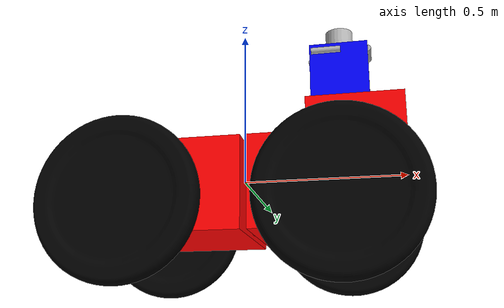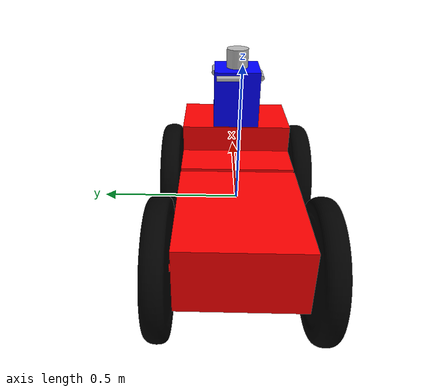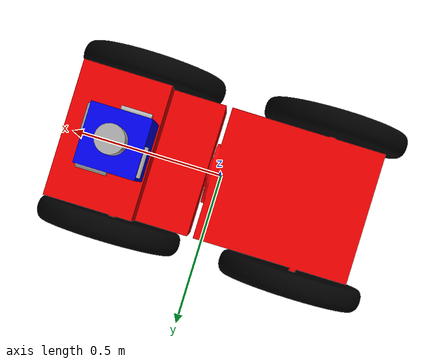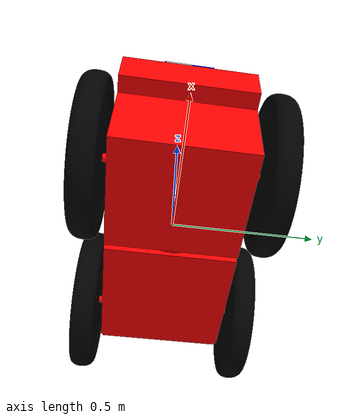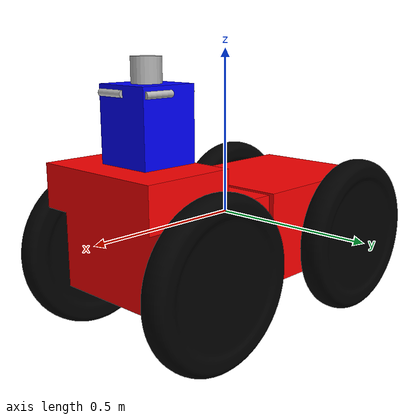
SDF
<?xml version='1.0'?>
<sdf version="1.6">
  <model name="explorer_r3_sensor_config_1">
    <link name="base_link">
      <pose>0 0 0 0 -0 0</pose>
      <inertial>
        <pose>0.002132 0.043885 0.087872 0 -0 0</pose>
        <mass>55.50075</mass>
        <inertia>
          <ixx>4.45363</ixx>
          <ixy>0.00719725</ixy>
          <ixz>-0.0297844</ixz>
          <iyy>2.48887</iyy>
          <iyz>-0.388599</iyz>
          <izz>5.58601</izz>
        </inertia>
      </inertial>
      <collision name="base_link_collision">
        <pose>0 0 0 0 -0 1.5707963267948966</pose>
        <geometry>
          <mesh>
            <scale>1 1 1</scale>
            <uri>meshes/base_link.STL</uri>
          </mesh>
        </geometry>
        <surface>
          <contact>
            <ode/>
          </contact>
          <friction>
            <ode/>
          </friction>
        </surface>
      </collision>
      <collision name="base_link_fixed_joint_lump__sensor_payload_link_collision_1">
        <pose>0.31054 -0.0903 0.23288 1.5707963267948966 0 -0</pose>
        <geometry>
          <mesh>
            <scale>1 1 1</scale>
            <uri>meshes/payload_cube.stl</uri>
          </mesh>
        </geometry>
        <surface>
          <contact>
            <ode/>
          </contact>
          <friction>
            <ode/>
          </friction>
        </surface>
      </collision>
      <visual name="base_link_visual">
        <pose>0 0 0 0 -0 1.5707963267948966</pose>
        <geometry>
          <mesh>
            <scale>1 1 1</scale>
            <uri>meshes/base_link.STL</uri>
          </mesh>
        </geometry>
        <material>
            <ambient>1 0 0 1</ambient>
            <diffuse>1 0 0 1</diffuse>
            <specular>1 0 0 0</specular>
        </material>
      </visual>
      <visual name="base_link_fixed_joint_lump__sensor_payload_link_visual_1">
        <pose>0.31054 -0.0903 0.19088 1.5707963267948966 0 -0</pose>
        <geometry>
          <mesh>
            <scale>1 1.3 1</scale>
            <uri>meshes/payload_cube.stl</uri>
          </mesh>
        </geometry>
        <material>
            <ambient>0 0 1 1</ambient>
            <diffuse>0 0 1 1</diffuse>
            <specular>0 0 0 0</specular>
        </material>
      </visual>
      <visual name="base_link_fixed_joint_lump__front_laser_visual_visual_2">
        <pose>0.310583 0.001835 0.44788 5e-06 0 -0</pose>
        <geometry>
          <cylinder>
            <length>0.07357</length>
            <radius>0.04267</radius>
          </cylinder>
        </geometry>
      </visual>
      <visual name="base_link_fixed_joint_lump__rear_link_visual_3">
        <pose>0.22054 0.037199 0.38988 1.5707963267948966 -0 3.1415926535897931</pose>
        <geometry>
          <cylinder>
            <length>0.09</length>
            <radius>0.01</radius>
          </cylinder>
        </geometry>
      </visual>
      <visual name="base_link_fixed_joint_lump__front_link_visual_4">
        <pose>0.40054 -0.035301 0.38988 1.5707963267948966 0 -0</pose>
        <geometry>
          <cylinder>
            <length>0.09</length>
            <radius>0.01</radius>
          </cylinder>
        </geometry>
      </visual>
      <visual name="base_link_fixed_joint_lump__left_link_visual_5">
        <pose>0.34854 0.091699 0.389881 1.5707963267948966 -4e-06 1.5707963267948966</pose>
        <geometry>
          <cylinder>
            <length>0.09</length>
            <radius>0.01</radius>
          </cylinder>
        </geometry>
      </visual>
      <visual name="base_link_fixed_joint_lump__right_link_visual_6">
        <pose>0.27254 -0.090301 0.38988 1.5707963267948966 -4e-06 1.5707963267948966</pose>
        <geometry>
          <cylinder>
            <length>0.09</length>
            <radius>0.01</radius>
          </cylinder>
        </geometry>
      </visual>

      <sensor name="imu_sensor" type="imu">
        <always_on>1</always_on>
        <update_rate>250</update_rate>
        <imu>
                    <enable_orientation>0</enable_orientation>
                    <angular_velocity>
                        <x>
                            <noise type="gaussian">
                                <mean>0</mean>
                                <stddev>0.009</stddev>
                                <bias_mean>0.00075</bias_mean>
                                <bias_stddev>0.005</bias_stddev>
                                <dynamic_bias_stddev>0.00002</dynamic_bias_stddev>
                                <dynamic_bias_correlation_time>400.0</dynamic_bias_correlation_time>
                                <precision>0.00025</precision>
                            </noise>
                        </x>
                        <y>
                            <noise type="gaussian">
                                <mean>0</mean>
                                <stddev>0.009</stddev>
                                <bias_mean>0.00075</bias_mean>
                                <bias_stddev>0.005</bias_stddev>
                                <dynamic_bias_stddev>0.00002</dynamic_bias_stddev>
                                <dynamic_bias_correlation_time>400.0</dynamic_bias_correlation_time>
                                <precision>0.00025</precision>
                            </noise>
                        </y>
                        <z>
                            <noise type="gaussian">
                                <mean>0</mean>
                                <stddev>0.009</stddev>
                                <bias_mean>0.00075</bias_mean>
                                <bias_stddev>0.005</bias_stddev>
                                <dynamic_bias_stddev>0.00002</dynamic_bias_stddev>
                                <dynamic_bias_correlation_time>400.0</dynamic_bias_correlation_time>
                                <precision>0.00025</precision>
                            </noise>
                        </z>
                    </angular_velocity>
                    <linear_acceleration>
                        <x>
                            <noise type="gaussian">
                                <mean>0</mean>
                                <stddev>0.021</stddev>
                                <bias_mean>0.05</bias_mean>
                                <bias_stddev>0.0075</bias_stddev>
                                <dynamic_bias_stddev>0.000375</dynamic_bias_stddev>
                                <dynamic_bias_correlation_time>175.0</dynamic_bias_correlation_time>
                                <precision>0.005</precision>
                            </noise>
                        </x>
                        <y>
                            <noise type="gaussian">
                                <mean>0</mean>
                                <stddev>0.021</stddev>
                                <bias_mean>0.05</bias_mean>
                                <bias_stddev>0.0075</bias_stddev>
                                <dynamic_bias_stddev>0.000375</dynamic_bias_stddev>
                                <dynamic_bias_correlation_time>175.0</dynamic_bias_correlation_time>
                                <precision>0.005</precision>
                            </noise>
                        </y>
                        <z>
                            <noise type="gaussian">
                                <mean>0</mean>
                                <stddev>0.021</stddev>
                                <bias_mean>0.05</bias_mean>
                                <bias_stddev>0.0075</bias_stddev>
                                <dynamic_bias_stddev>0.000375</dynamic_bias_stddev>
                                <dynamic_bias_correlation_time>175.0</dynamic_bias_correlation_time>
                                <precision>0.005</precision>
                            </noise>
                        </z>
                    </linear_acceleration>
                </imu>
      </sensor>
      <velocity_decay/>
      <velocity_decay/>
      <velocity_decay/>
      <sensor name="front_laser" type="gpu_lidar">
              <pose>0.310583 0.001835 0.44788 5e-06 0 -0</pose>
              <always_on>1</always_on>
              <update_rate>10</update_rate>
              <ray>
                <scan>
                  <horizontal>
                    <samples>1800</samples>
                    <resolution>1</resolution>
                    <min_angle>-3.14159</min_angle>
                    <max_angle>3.14159</max_angle>
                  </horizontal>
                  <vertical>
                    <samples>16</samples>
                    <resolution>1</resolution>
                    <min_angle>-0.261799</min_angle>
                    <max_angle>0.261799</max_angle>
                  </vertical>
                </scan>
                <range>
                  <min>0.3</min>
                  <max>100</max>
                </range>
                <noise>
                  <type>gaussian</type>
                  <mean>0</mean>
                  <stddev>0.01</stddev>
                </noise>
              </ray>
      </sensor>
      <velocity_decay/>
      <sensor name="rear_camera" type="rgbd_camera">
              <pose>0.22054 0.037199 0.38988 -2e-06 -0 3.1415926535897931</pose>
              <always_on>1</always_on>
              <update_rate>15</update_rate>
              <camera name="rear_camera">
                <horizontal_fov>1.0472</horizontal_fov>
                <lens>
                  <intrinsics>
                    <!-- fx = fy = width / ( 2 * tan (hfov / 2 ) ) -->
                    <fx>277.1</fx>
                    <fy>277.1</fy>
                      <!-- cx = ( width + 1 ) / 2 -->
                    <cx>160.5</cx>
                      <!-- cy = ( height + 1 ) / 2 -->
                    <cy>120.5</cy>
                    <s>0</s>
                  </intrinsics>
                </lens>
                <distortion>
                  <k1>0.0</k1>
                  <k2>0.0</k2>
                  <k3>0.0</k3>
                  <p1>0.0</p1>
                  <p2>0.0</p2>
                  <center>0.5 0.5</center>
                </distortion>
                <image>
                  <width>320</width>
                  <height>240</height>
                  <format>R8G8B8</format>
                </image>
                <clip>
                  <near>0.01</near>
                  <far>300</far>
                </clip>
                <depth_camera>
                  <clip>
                    <near>0.1</near>
                    <far>10</far>
                  </clip>
                </depth_camera>
                <noise>
                  <type>gaussian</type>
                  <mean>0</mean>
                  <stddev>0.007</stddev>
                </noise>
              </camera>
      </sensor>
      <velocity_decay/>
      <sensor name="front_camera" type="rgbd_camera">
              <pose>0.40054 -0.035301 0.38988 5e-06 0 -0</pose>
              <always_on>1</always_on>
              <update_rate>15</update_rate>
              <camera name="front_camera">
                <horizontal_fov>1.0472</horizontal_fov>
                <lens>
                  <intrinsics>
                    <!-- fx = fy = width / ( 2 * tan (hfov / 2 ) ) -->
                    <fx>277.1</fx>
                    <fy>277.1</fy>
                      <!-- cx = ( width + 1 ) / 2 -->
                    <cx>160.5</cx>
                      <!-- cy = ( height + 1 ) / 2 -->
                    <cy>120.5</cy>
                    <s>0</s>
                  </intrinsics>
                </lens>
                <distortion>
                  <k1>0.0</k1>
                  <k2>0.0</k2>
                  <k3>0.0</k3>
                  <p1>0.0</p1>
                  <p2>0.0</p2>
                  <center>0.5 0.5</center>
                </distortion>
                <image>
                  <width>320</width>
                  <height>240</height>
                  <format>R8G8B8</format>
                </image>
                <clip>
                  <near>0.01</near>
                  <far>300</far>
                </clip>
                <depth_camera>
                  <clip>
                    <near>0.1</near>
                    <far>10</far>
                  </clip>
                </depth_camera>
                <noise>
                  <type>gaussian</type>
                  <mean>0</mean>
                  <stddev>0.007</stddev>
                </noise>
              </camera>
      </sensor>
      <velocity_decay/>
      <sensor name="left_camera" type="rgbd_camera">
              <pose>0.34854 0.091699 0.389881 1e-06 -4e-06 1.5707963267948966</pose>
              <always_on>1</always_on>
              <update_rate>15</update_rate>
              <camera name="left_camera">
                <horizontal_fov>1.0472</horizontal_fov>
                <lens>
                  <intrinsics>
                    <!-- fx = fy = width / ( 2 * tan (hfov / 2 ) ) -->
                    <fx>277.1</fx>
                    <fy>277.1</fy>
                      <!-- cx = ( width + 1 ) / 2 -->
                    <cx>160.5</cx>
                      <!-- cy = ( height + 1 ) / 2 -->
                    <cy>120.5</cy>
                    <s>0</s>
                  </intrinsics>
                </lens>
                <distortion>
                  <k1>0.0</k1>
                  <k2>0.0</k2>
                  <k3>0.0</k3>
                  <p1>0.0</p1>
                  <p2>0.0</p2>
                  <center>0.5 0.5</center>
                </distortion>
                <image>
                  <width>320</width>
                  <height>240</height>
                  <format>R8G8B8</format>
                </image>
                <clip>
                  <near>0.01</near>
                  <far>300</far>
                </clip>
                <depth_camera>
                  <clip>
                    <near>0.1</near>
                    <far>10</far>
                  </clip>
                </depth_camera>
                <noise>
                  <type>gaussian</type>
                  <mean>0</mean>
                  <stddev>0.007</stddev>
                </noise>
              </camera>
      </sensor>
      <gravity>1</gravity>
      <velocity_decay/>
      <sensor name="right_camera" type="rgbd_camera">
              <pose>0.27254 -0.090301 0.38988 1e-06 4e-06 -1.5707963267948966</pose>
              <always_on>1</always_on>
              <update_rate>15</update_rate>
              <camera name="right_camera">
                <horizontal_fov>1.0472</horizontal_fov>
                <lens>
                  <intrinsics>
                    <!-- fx = fy = width / ( 2 * tan (hfov / 2 ) ) -->
                    <fx>277.1</fx>
                    <fy>277.1</fy>
                      <!-- cx = ( width + 1 ) / 2 -->
                    <cx>160.5</cx>
                      <!-- cy = ( height + 1 ) / 2 -->
                    <cy>120.5</cy>
                    <s>0</s>
                  </intrinsics>
                </lens>
                <distortion>
                  <k1>0.0</k1>
                  <k2>0.0</k2>
                  <k3>0.0</k3>
                  <p1>0.0</p1>
                  <p2>0.0</p2>
                  <center>0.5 0.5</center>
                </distortion>
                <image>
                  <width>320</width>
                  <height>240</height>
                  <format>R8G8B8</format>
                </image>
                <clip>
                  <near>0.01</near>
                  <far>300</far>
                </clip>
                <depth_camera>
                  <clip>
                    <near>0.1</near>
                    <far>10</far>
                  </clip>
                </depth_camera>
                <noise>
                  <type>gaussian</type>
                  <mean>0</mean>
                  <stddev>0.007</stddev>
                </noise>
              </camera>
        </sensor>
        <light name="right_light_source" type="spot">
          <pose frame="">0.358 -0.133 0.45 3.1415926535897931 1.5707963267948966 -1.5707963267948966</pose>
          <attenuation>
            <range>50</range>
            <linear>0</linear>
            <constant>0.1</constant>
            <quadratic>0.0025</quadratic>
          </attenuation>
          <diffuse>1.0 1.0 0.63 1</diffuse>
          <specular>1.0 1.0 0.63 1</specular>
          <spot>
            <inner_angle>1</inner_angle>
            <outer_angle>1.1</outer_angle>
            <falloff>1</falloff>
          </spot>
          <direction>0 0 -1</direction>
          <cast_shadows>1</cast_shadows>
        </light>
        <light name="front_light" type="spot">
          <pose frame="">0.49 0 0.45 1.5707963267948966 1.5707963267948966 -1.5707963267948966</pose>
          <attenuation>
            <range>50</range>
            <linear>0</linear>
            <constant>0.1</constant>
            <quadratic>0.0025</quadratic>
          </attenuation>
          <diffuse>0.8 0.8 0.5 1</diffuse>
          <specular>0.8 0.8 0.5 1</specular>
          <spot>
            <inner_angle>1</inner_angle>
            <outer_angle>1.1</outer_angle>
            <falloff>1</falloff>
          </spot>
          <direction>0 -1 0</direction>
          <cast_shadows>1</cast_shadows>
        </light>
        <light name="left_light_source" type="spot">
          <pose frame="">0.358 0.133 0.45 0 1.5707963267948966 -1.5707963267948966</pose>
          <attenuation>
            <range>50</range>
            <linear>0</linear>
            <constant>0.1</constant>
            <quadratic>0.0025</quadratic>
          </attenuation>
          <diffuse>1.0 1.0 0.63 1</diffuse>
          <specular>1.0 1.0 0.63 1</specular>
          <spot>
            <inner_angle>1</inner_angle>
            <outer_angle>1.1</outer_angle>
            <falloff>1</falloff>
          </spot>
          <direction>0 0 -1</direction>
          <cast_shadows>1</cast_shadows>
        </light>
        <light name="back_light_source" type="spot">
          <pose frame="">0.26 0 0.46 -1.5707963267948966 1.5707963267948966 -1.5707963267948966</pose>
          <attenuation>
            <range>50</range>
            <linear>0</linear>
            <constant>0.1</constant>
            <quadratic>0.0025</quadratic>
          </attenuation>
          <diffuse>1.0 1.0 0.63 1</diffuse>
          <specular>1.0 1.0 0.63 1</specular>
          <spot>
            <inner_angle>1</inner_angle>
            <outer_angle>1.1</outer_angle>
            <falloff>1</falloff>
          </spot>
          <direction>0 0 -1</direction>
          <cast_shadows>1</cast_shadows>
        </light>
    </link>
    <link name="Rear_Rocker_Link">
      <pose>0 0 -0.092278 -1.5707963267948966 0 0</pose>
      <inertial>
        <pose>0.101306 -0.050257 0.228473 0 -0 0</pose>
        <mass>21.41965</mass>
        <inertia>
          <ixx>0.848992</ixx>
          <ixy>0.00301842</ixy>
          <ixz>5.21788e-06</ixz>
          <iyy>1.03049</iyy>
          <iyz>1.2171e-07</iyz>
          <izz>0.43679</izz>
        </inertia>
      </inertial>
      <collision name="Rear_Rocker_Link_collision">
        <pose>-0.31979 0 -0.22847 0 -0 0</pose>
        <geometry>
          <mesh>
            <scale>1 1 1</scale>
            <uri>meshes/Center Pivot.STL</uri>
          </mesh>
        </geometry>
        <surface>
          <contact>
            <ode/>
          </contact>
          <friction>
            <ode/>
          </friction>
        </surface>
      </collision>
      <visual name="Rear_Rocker_Link_visual">
        <pose>-0.31979 0 -0.22847 0 -0 0</pose>
        <geometry>
          <mesh>
            <scale>1 1 1</scale>
            <uri>meshes/Center Pivot.STL</uri>
          </mesh>
        </geometry>
        <material>
            <ambient>1 0 0 1</ambient>
            <diffuse>1 0 0 1</diffuse>
            <specular>0 0 0 0</specular>
        </material>
      </visual>
      <gravity>1</gravity>
      <velocity_decay/>
    </link>
    <joint name="Center Pivot" type="revolute">
      <child>Rear_Rocker_Link</child>
      <parent>base_link</parent>
      <axis>
        <xyz>-1 0 0</xyz>
        <limit>
          <lower>-0.5585</lower>
          <upper>0.5585</upper>
          <effort>30</effort>
          <velocity>1</velocity>
        </limit>
        <dynamics>
          <spring_reference>0</spring_reference>
          <spring_stiffness>0</spring_stiffness>
        </dynamics>
        <use_parent_model_frame>0</use_parent_model_frame>
      </axis>
    </joint>
    <link name="left_rear_wheel_link">
      <pose>-0.31979 0.22844 -0.092279 -1.5707963267948966 1.37059 -3.1415926535897931</pose>
      <inertial>
        <pose>-4e-06 0 -0.038479 0 -0 0</pose>
        <mass>5.5398</mass>
        <inertia>
          <ixx>0.127932</ixx>
          <ixy>6.41777e-06</ixy>
          <ixz>2.40271e-06</ixz>
          <iyy>0.0695645</iyy>
          <iyz>1.35439e-09</iyz>
          <izz>0.0695643</izz>
        </inertia>
      </inertial>
      <collision name="left_rear_wheel_link_collision">
        <pose>0 0 -0.0375 0 0 0</pose>
        <geometry>
           <cylinder>
            <length>0.0765</length>
            <radius>0.246</radius>
          </cylinder>
        </geometry>
        <surface>
          <friction>
            <ode>
              <mu>0.5</mu>
              <mu2>1</mu2>
              <fdir1>0 0 1</fdir1>
              <slip1>0.00001</slip1>
              <slip2>0</slip2>
              <max_vel>10</max_vel>
              <min_depth>0.1</min_depth>
            </ode>
          </friction>
          <contact>
            <ode>
              <kp>1e+07</kp>
              <kd>0.0001</kd>
            </ode>
          </contact>
        </surface>
      </collision>
      <visual name="left_rear_wheel_link_visual">
        <pose>0 0 0 0 -0 0</pose>
        <geometry>
          <mesh>
            <scale>1 1 1</scale>
            <uri>meshes/rl_wheel.STL</uri>
          </mesh>
        </geometry>
        <material>
            <ambient>0 0 0 1</ambient>
            <diffuse>0 0 0 1</diffuse>
            <specular>0 0 0 0</specular>
        </material>
      </visual>
      <velocity_decay/>
      <gravity>1</gravity>
      <velocity_decay/>
    </link>
    <joint name="left_rear_wheel" type="revolute">
      <child>left_rear_wheel_link</child>
      <parent>Rear_Rocker_Link</parent>
      <axis>
        <xyz>0 0 -1</xyz>
        <limit>
          <lower>-1e+16</lower>
          <upper>1e+16</upper>
        </limit>
        <dynamics>
          <damping>10</damping>
          <friction>0.1</friction>
          <spring_reference>0</spring_reference>
          <spring_stiffness>0</spring_stiffness>
        </dynamics>
        <use_parent_model_frame>0</use_parent_model_frame>
      </axis>
    </joint>
    <link name="right_rear_wheel_link">
      <pose>-0.31979 -0.22844 -0.092277 -1.5707963267948966 0 0</pose>
      <inertial>
        <pose>4e-06 0 -0.038479 0 -0 0</pose>
        <mass>5.5398</mass>
        <inertia>
          <ixx>0.127932</ixx>
          <ixy>6.41777e-06</ixy>
          <ixz>2.40271e-06</ixz>
          <iyy>0.0695645</iyy>
          <iyz>1.35439e-09</iyz>
          <izz>0.0695643</izz>
        </inertia>
      </inertial>
      <collision name="right_rear_wheel_link_collision">
        <pose>0 0 -0.0375 0 0 0</pose>
        <geometry>
          <cylinder>
            <length>0.0765</length>
            <radius>0.246</radius>
          </cylinder>
        </geometry>
        <surface>
          <friction>
            <ode>
              <mu>0.5</mu>
              <mu2>1</mu2>
              <fdir1>0 0 1</fdir1>
              <slip1>0.00001</slip1>
              <slip2>0</slip2>
              <max_vel>10</max_vel>
              <min_depth>0.1</min_depth>
            </ode>
          </friction>
          <contact>
            <ode>
              <kp>1e+07</kp>
              <kd>0.0001</kd>
            </ode>
          </contact>
        </surface>
      </collision>
      <visual name="right_rear_wheel_link_visual">
        <pose>0 0 0 0 -0 0</pose>
        <geometry>
          <mesh>
            <scale>1 1 1</scale>
            <uri>meshes/rr_wheel.STL</uri>
          </mesh>
        </geometry>
        <material>
            <ambient>0 0 0 1</ambient>
            <diffuse>0 0 0 1</diffuse>
            <specular>0 0 0 0</specular>
        </material>
      </visual>
      <velocity_decay/>
      <gravity>1</gravity>
      <velocity_decay/>
    </link>
    <joint name="right_rear_wheel" type="revolute">
      <child>right_rear_wheel_link</child>
      <parent>Rear_Rocker_Link</parent>
      <axis>
        <xyz>0 0 1</xyz>
        <limit>
          <lower>-1e+16</lower>
          <upper>1e+16</upper>
        </limit>
        <dynamics>
          <damping>10</damping>
          <friction>0.1</friction>
          <spring_reference>0</spring_reference>
          <spring_stiffness>0</spring_stiffness>
        </dynamics>
        <use_parent_model_frame>0</use_parent_model_frame>
      </axis>
    </joint>
    <link name="left_front_wheel_link">
      <pose>0.31064 0.22844 -0.092278 -1.5707963267948966 1.3703 3.1415926535897931</pose>
      <inertial>
        <pose>4e-06 -0 -0.038006 0 -0 0</pose>
        <mass>5.5398</mass>
        <inertia>
          <ixx>0.127932</ixx>
          <ixy>6.41777e-06</ixy>
          <ixz>2.40271e-06</ixz>
          <iyy>0.0695645</iyy>
          <iyz>1.35439e-09</iyz>
          <izz>0.0695643</izz>
        </inertia>
      </inertial>
      <collision name="left_front_wheel_link_collision">
        <pose>0 0 -0.0375 0 0 0</pose>
        <geometry>
          <cylinder>
            <length>0.0765</length>
            <radius>0.246</radius>
          </cylinder>
        </geometry>
        <surface>
          <friction>
            <ode>
              <mu>0.5</mu>
              <mu2>1</mu2>
              <fdir1>0 0 1</fdir1>
              <slip1>0.00001</slip1>
              <slip2>0</slip2>
              <max_vel>10</max_vel>
              <min_depth>0.1</min_depth>
            </ode>
          </friction>
          <contact>
            <ode>
              <kp>1e+07</kp>
              <kd>0.0001</kd>
            </ode>
          </contact>
        </surface>
      </collision>
      <visual name="left_front_wheel_link_visual">
        <pose>0 0 0 0 -0 0</pose>
        <geometry>
          <mesh>
            <scale>1 1 1</scale>
            <uri>meshes/fl_wheel.STL</uri>
          </mesh>
        </geometry>
        <material>
            <ambient>0 0 0 1</ambient>
            <diffuse>0 0 0 1</diffuse>
            <specular>0 0 0 0</specular>
        </material>
      </visual>
      <velocity_decay/>
      <gravity>1</gravity>
      <velocity_decay/>
    </link>
    <joint name="left_front_wheel" type="revolute">
      <child>left_front_wheel_link</child>
      <parent>base_link</parent>
      <axis>
        <xyz>0 0 -1</xyz>
        <limit>
          <lower>-1e+16</lower>
          <upper>1e+16</upper>
        </limit>
        <dynamics>
          <damping>10</damping>
          <friction>0.1</friction>
          <spring_reference>0</spring_reference>
          <spring_stiffness>0</spring_stiffness>
        </dynamics>
        <use_parent_model_frame>0</use_parent_model_frame>
      </axis>
    </joint>
    <link name="right_front_wheel_link">
      <pose>0.31064 -0.22847 -0.092278 -1.5707963267948966 0 0</pose>
      <inertial>
        <pose>4e-06 0 -0.038479 0 -0 0</pose>
        <mass>5.5398</mass>
        <inertia>
          <ixx>0.127932</ixx>
          <ixy>6.41777e-06</ixy>
          <ixz>2.40271e-06</ixz>
          <iyy>0.0695645</iyy>
          <iyz>1.35439e-09</iyz>
          <izz>0.0695643</izz>
        </inertia>
      </inertial>
      <collision name="right_front_wheel_link_collision">
        <pose>0 0 -0.0375 0 0 0</pose>
        <geometry>
          <cylinder>
            <length>0.0765</length>
            <radius>0.246</radius>
          </cylinder>
        </geometry>
        <surface>
          <friction>
            <ode>
              <mu>0.5</mu>
              <mu2>1</mu2>
              <fdir1>0 0 1</fdir1>
              <slip1>0.00001</slip1>
              <slip2>0</slip2>
              <max_vel>10</max_vel>
              <min_depth>0.1</min_depth>
            </ode>
          </friction>
          <contact>
            <ode>
              <kp>1e+07</kp>
              <kd>0.0001</kd>
            </ode>
          </contact>
        </surface>
      </collision>
      <visual name="right_front_wheel_link_visual">
        <pose>0 0 0 0 -0 0</pose>
        <geometry>
          <mesh>
            <scale>1 1 1</scale>
            <uri>meshes/fr_wheel.STL</uri>
          </mesh>
        </geometry>
        <material>
            <ambient>0 0 0 1</ambient>
            <diffuse>0 0 0 1</diffuse>
            <specular>0 0 0 0</specular>
        </material>
      </visual>
      <velocity_decay/>
      <gravity>1</gravity>
      <velocity_decay/>
    </link>
    <joint name="right_front_wheel" type="revolute">
      <child>right_front_wheel_link</child>
      <parent>base_link</parent>
      <axis>
        <xyz>0 0 1</xyz>
        <limit>
          <lower>-1e+16</lower>
          <upper>1e+16</upper>
        </limit>
        <dynamics>
          <damping>10</damping>
          <friction>0.1</friction>
          <spring_reference>0</spring_reference>
          <spring_stiffness>0</spring_stiffness>
        </dynamics>
        <use_parent_model_frame>0</use_parent_model_frame>
      </axis>
    </joint>
    <static>0</static>
  </model>
</sdf>
